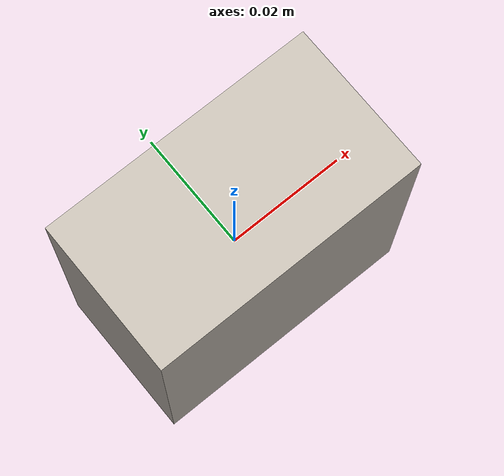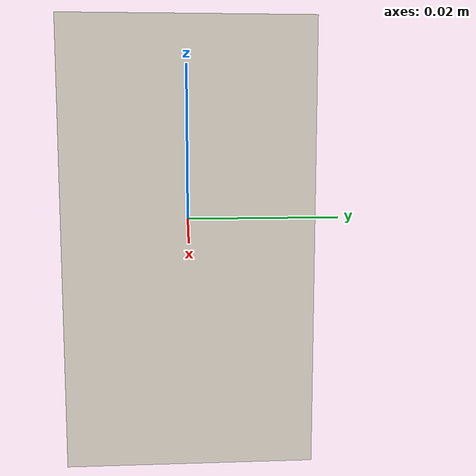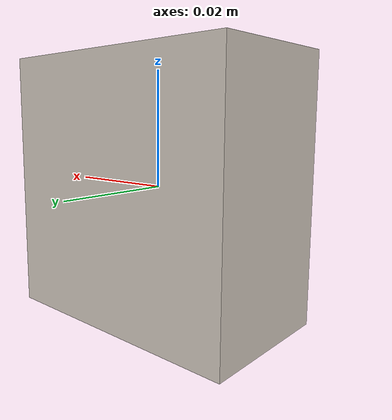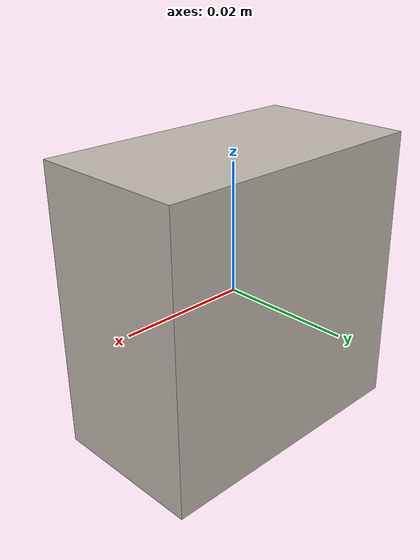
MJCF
<mujoco model="five">
  <asset>
    <texture type="cube" file="textures/smallboxes/five.png" rgb1="1 1 1" name="tex-five"/>
    <material name="five" reflectance="0.5" texrepeat="3 3" texture="tex-five" texuniform="false"/>
  </asset>
  <worldbody>
    <body>
      <body name="collision">
        <geom pos="0 0 0" size="0.0225 0.0125 0.0225" type="box" solimp="0.998 0.998 0.001" solref="0.001 1" density="200" friction="0.95 0.3 0.1" material="five" group="1" condim="4"/>
      </body>
      <site rgba="0 0 0 0" size="0.005" pos="0 0 -0.05" name="bottom_site"/>
      <site rgba="0 0 0 0" size="0.005" pos="0 0 0.03" name="top_site"/>
      <site rgba="0 0 0 0" size="0.005" pos="0.06 0.06 0" name="horizontal_radius_site"/>
    </body>
  </worldbody>
</mujoco>
